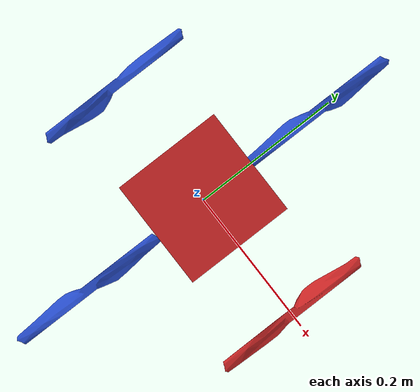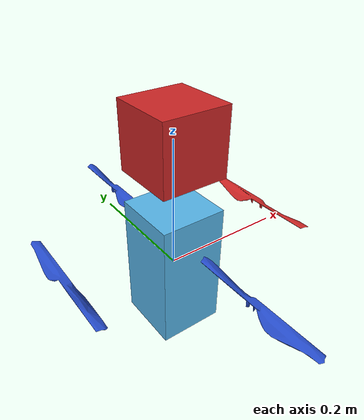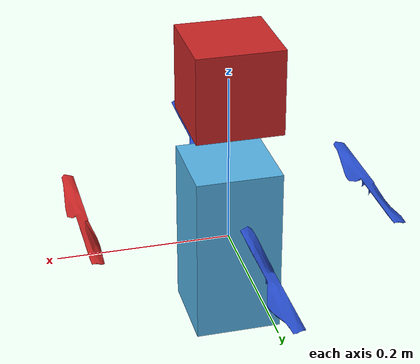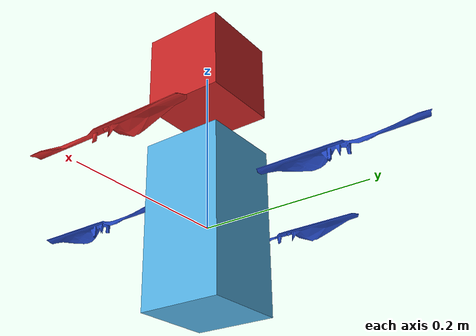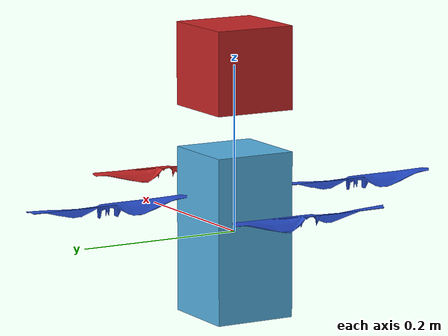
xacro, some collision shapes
<?xml version="1.0"?>

<robot
  name="pelican"
  xmlns:xacro="http://ros.org/wiki/xacro"
>
  <!-- Properties -->
  <xacro:property name="namespace" value="pelican" />
  <xacro:property name="mesh_file" value="pelican.dae" />
  <xacro:property name="mass" value="0.6" /> <!-- [kg] -->
  <xacro:property name="body_width" value="0.1" />
  <xacro:property name="body_height" value="0.2" />
  <xacro:property name="mass_rotor" value="0.01" /> <!-- [kg] -->
  <xacro:property name="arm_length" value="0.17" />
  <xacro:property name="rotor_offset_top" value="0.05" />
  <xacro:property name="radius_rotor" value="0.08" />
  <xacro:property name="motor_constant" value="9.9865e-06" /> <!-- [kg*m/s^2] -->
  <xacro:property name="moment_constant" value="0.016" />
  <xacro:property name="time_constant" value="0.0125" />
  <xacro:property name="max_rot_velocity" value="838" /> <!-- [rad/s] -->
  <xacro:property name="rotor_drag_coefficient" value="0.0001" />
  <xacro:property name="rolling_moment_coefficient" value="0.000001" />

  <!-- Property Blocks -->
  <xacro:property name="body_inertia">
    <inertia ixx="0.0056" ixy="0.0" ixz="0.0" iyy="0.0056" iyz="0.0" izz="0.0056" /> <!-- [kg*m^2] [kg*m^2] [kg*m^2] [kg*m^2] [kg*m^2] [kg*m^2] -->
  </xacro:property>
  <xacro:property name="rotor_inertia">
    <inertia ixx="0.0001" ixy="0.0" ixz="0.0" iyy="0.00001" iyz="0.0" izz="0.0000036" /> <!-- [kg*m^2] [kg*m^2] [kg*m^2] [kg*m^2] [kg*m^2] [kg*m^2] -->
  </xacro:property>

  <!-- Included URDF Files -->
  <xacro:include filename="$(find mav_description)/urdf/multirotor_base.urdf.xacro" />

  <!-- Instantiate multirotor_base_macro once -->
  <xacro:multirotor_base_macro
    robot_namespace="${namespace}"
    mass="${mass}"
    body_width="${body_width}"
    body_height="${body_height}"
    mesh_file="${mesh_file}"
    bag_file="pelican.bag"
    enable_bag_plugin="false">
    <xacro:insert_block name="body_inertia" />
  </xacro:multirotor_base_macro>

  <!-- Instantiate rotors -->
  <xacro:vertical_rotor
    robot_namespace="${namespace}"
    suffix="front" direction="cw"
    motor_constant="${motor_constant}"
    moment_constant="${moment_constant}"
    parent="base_link"
    mass_rotor="${mass_rotor}"
    radius_rotor="${radius_rotor}"
    time_constant="${time_constant}"
    max_rot_velocity="${max_rot_velocity}"
    motor_number="0"
    rotor_drag_coefficient="${rotor_drag_coefficient}"
    rolling_moment_coefficient="${rolling_moment_coefficient}"
    color="Red">
    <origin xyz="${arm_length} 0 ${rotor_offset_top}" rpy="0 0 0" />
    <xacro:insert_block name="rotor_inertia" />
  </xacro:vertical_rotor>
  <xacro:vertical_rotor
    robot_namespace="${namespace}"
    suffix="left"
    direction="ccw"
    motor_constant="${motor_constant}"
    moment_constant="${moment_constant}"
    parent="base_link"
    mass_rotor="${mass_rotor}"
    radius_rotor="${radius_rotor}"
    time_constant="${time_constant}"
    max_rot_velocity="${max_rot_velocity}"
    motor_number="1"
    rotor_drag_coefficient="${rotor_drag_coefficient}"
    rolling_moment_coefficient="${rolling_moment_coefficient}"
    color="Blue">
    <origin xyz="0 ${arm_length} ${rotor_offset_top}" rpy="0 0 0" />
    <xacro:insert_block name="rotor_inertia" />
  </xacro:vertical_rotor>
  <xacro:vertical_rotor
    robot_namespace="${namespace}"
    suffix="back"
    direction="cw"
    motor_constant="${motor_constant}"
    moment_constant="${moment_constant}"
    parent="base_link"
    mass_rotor="${mass_rotor}"
    radius_rotor="${radius_rotor}"
    time_constant="${time_constant}"
    max_rot_velocity="${max_rot_velocity}"
    motor_number="2"
    rotor_drag_coefficient="${rotor_drag_coefficient}"
    rolling_moment_coefficient="${rolling_moment_coefficient}"
    color="Blue">
    <origin xyz="-${arm_length} 0 ${rotor_offset_top}" rpy="0 0 0" />
    <xacro:insert_block name="rotor_inertia" />
  </xacro:vertical_rotor>
  <xacro:vertical_rotor
    robot_namespace="${namespace}"
    suffix="right"
    direction="ccw"
    motor_constant="${motor_constant}"
    moment_constant="${moment_constant}"
    parent="base_link"
    mass_rotor="${mass_rotor}"
    radius_rotor="${radius_rotor}"
    time_constant="${time_constant}"
    max_rot_velocity="${max_rot_velocity}"
    motor_number="3"
    rotor_drag_coefficient="${rotor_drag_coefficient}"
    rolling_moment_coefficient="${rolling_moment_coefficient}"
    color="Blue">
    <origin xyz="0 -${arm_length} ${rotor_offset_top}" rpy="0 0 0" />
    <xacro:insert_block name="rotor_inertia" />
  </xacro:vertical_rotor>

  <xacro:camera_macro robot_namespace="${namespace}">
  </xacro:camera_macro>

</robot>

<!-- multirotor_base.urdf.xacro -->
<robot xmlns:xacro="http://ros.org/wiki/xacro">
  <!-- Main multirotor link -->
  <xacro:macro name="multirotor_base_macro"
    params="robot_namespace mass body_width body_height mesh_file *inertia">
    <link name="base_link"></link>
    <joint name="base_joint" type="fixed">
      <origin xyz="0 0 0" rpy="0 0 0" />
      <parent link="base_link" />
      <child link="base_link_inertia" />
    </joint>
    <link name="base_link_inertia">
      <inertial>
        <mass value="${mass}" />  <!-- [kg] -->
        <origin xyz="0 0 0" />
        <xacro:insert_block name="inertia" />
      </inertial>

      <visual>
        <origin xyz="0 0 0" rpy="0 0 0" />
        <geometry>
          <mesh filename="package://mav_description/meshes/${mesh_file}"
            scale="1 1 1" />

        </geometry>
      </visual>

      <collision>
        <origin xyz="0 0 0" rpy="0 0 0" />
        <geometry>
          <box size="${body_width} ${body_width} ${body_height}" />
        </geometry>
      </collision>
    </link>

    <!-- IMU -->
    <link name="imu_link">
      <inertial>
        <inertia ixx="0.001" ixy="0.0" ixz="0.0" iyy="0.001" iyz="0.0"
          izz="0.001" />
        <mass value="0.01" />  <!-- [kg] -->
        <origin xyz="0 0 0" rpy="0 0 0" />
      </inertial>
    </link>
    <!-- IMU joint -->
    <joint name="imu_joint" type="revolute">
      <!--origin xyz="0 0 0" rpy="3.1416 0 0" / -->
      <parent link="base_link" />
      <child link="imu_link" />
      <limit upper="0" lower="0" effort="0" velocity="0" />
    </joint>

    <!-- attach multirotor_base_plugin to the base_link -->
    <gazebo>
      <plugin filename="libmav_gazebo_multirotor_base_plugin.so" name="rosbag">
        <robotNamespace>${namespace}</robotNamespace>
        <linkName>base_link</linkName>
        <rotorVelocitySlowdownSim>${rotor_velocity_slowdown_sim}</rotorVelocitySlowdownSim>
      </plugin>
    </gazebo>
  </xacro:macro>

  <!-- camera -->
  <xacro:macro name="camera_macro" params="robot_namespace">
    <!-- joint -->
    <joint name="camera_joint" type="fixed">
      <axis xyz="0 1 0" />
      <origin xyz="0 0 0.2" rpy="0 0 0" />
      <parent link="base_link" />
      <child link="camera_link" />
    </joint>

    <!-- link -->
    <link name="camera_link">
      <collision>
        <origin xyz="0 0 0" rpy="0 0 0" />
        <geometry>
          <box size="0.1 0.1 0.1" />
        </geometry>
      </collision>

      <visual>
        <origin xyz="0 0 0" rpy="0 0 0" />
        <geometry>
          <box size="0.1 0.1 0.1" />
        </geometry>
        <material name="red" />
      </visual>

      <inertial>
        <mass value="1e-5" />
        <origin xyz="0 0 0" rpy="0 0 0" />
        <inertia ixx="1e-6" ixy="0" ixz="0" iyy="1e-6" iyz="0" izz="1e-6" />
      </inertial>
    </link>
    <gazebo reference="camera_link">
      <sensor type="camera" name="camera1">
        <update_rate>30.0</update_rate>
        <camera name="head">
          <horizontal_fov>2</horizontal_fov>
          <image>
            <width>800</width>
            <height>600</height>
            <format>R8G8B8</format>
          </image>
          <clip>
            <near>0.02</near>
            <far>300</far>
          </clip>
          <noise>
            <type>gaussian</type>
            <mean>0.0</mean>
            <stddev>0.007</stddev>
          </noise>
        </camera>
        <plugin name="camera_controller" filename="libgazebo_ros_camera.so">
          <alwaysOn>true</alwaysOn>
          <updateRate>0.0</updateRate>
          <cameraName>${robot_namespace}/camera1</cameraName>
          <imageTopicName>image_raw</imageTopicName>
          <cameraInfoTopicName>camera_info</cameraInfoTopicName>
          <frameName>camera_link</frameName>
          <hackBaseline>0.07</hackBaseline>
          <distortionK1>0.0</distortionK1>
          <distortionK2>0.0</distortionK2>
          <distortionK3>0.0</distortionK3>
          <distortionT1>0.0</distortionT1>
          <distortionT2>0.0</distortionT2>
        </plugin>
      </sensor>
    </gazebo>
  </xacro:macro>

  <!-- Rotor joint and link -->
  <xacro:macro name="vertical_rotor"
    params="robot_namespace suffix direction motor_constant moment_constant parent mass_rotor radius_rotor time_constant max_rot_velocity motor_number rotor_drag_coefficient rolling_moment_coefficient color *origin *inertia">
    <joint name="rotor_${motor_number}_joint" type="continuous">
      <xacro:insert_block name="origin" />
      <axis xyz="0 0 1" />
      <!-- TODO(ff): not currently set because it's not yet supported -->
      <parent link="${parent}" />
      <child link="rotor_${motor_number}" />

    </joint>
    <!-- TODO(ff): not currently set because it's not yet supported -->
    <link name="rotor_${motor_number}">
      <inertial>
        <mass value="${mass_rotor}" /> <!-- [kg] -->
        <xacro:insert_block name="inertia" />
      </inertial>
      <visual>
        <geometry>

          <mesh filename="package://mav_description/meshes/propeller_${direction}.dae"
            scale="0.001 0.001 0.001" />
        </geometry>
      </visual>
      <collision>
        <geometry>
          <cylinder length="0.005" radius="${radius_rotor}" />
        </geometry>
      </collision>
    </link>
    <gazebo>
      <plugin name="${suffix}_motor_model" filename="libmav_gazebo_motor_model.so">
        <jointName>rotor_${motor_number}_joint</jointName>
        <linkName>rotor_${motor_number}</linkName>
        <turningDirection>${direction}</turningDirection>
        <timeConstant>${time_constant}</timeConstant>
        <maxRotVelocity>${max_rot_velocity}</maxRotVelocity>
        <motorConstant>${motor_constant}</motorConstant>
        <momentConstant>${moment_constant}</momentConstant>
        <commandTopic>${robot_namespace}/motor_vel_ref</commandTopic>
        <motorNumber>${motor_number}</motorNumber>
        <rotorDragCoefficient>${rotor_drag_coefficient}</rotorDragCoefficient>
        <rollingMomentCoefficient>${rolling_moment_coefficient}</rollingMomentCoefficient>
        <motorVelocityTopic>${robot_namespace}/motor_vel/${motor_number}</motorVelocityTopic>
        <rotorVelocitySlowdownSim>${rotor_velocity_slowdown_sim}</rotorVelocitySlowdownSim>
      </plugin>
    </gazebo>
    <gazebo reference="rotor_${motor_number}">
      <material>Gazebo/${color}</material>
    </gazebo>
  </xacro:macro>
</robot>
